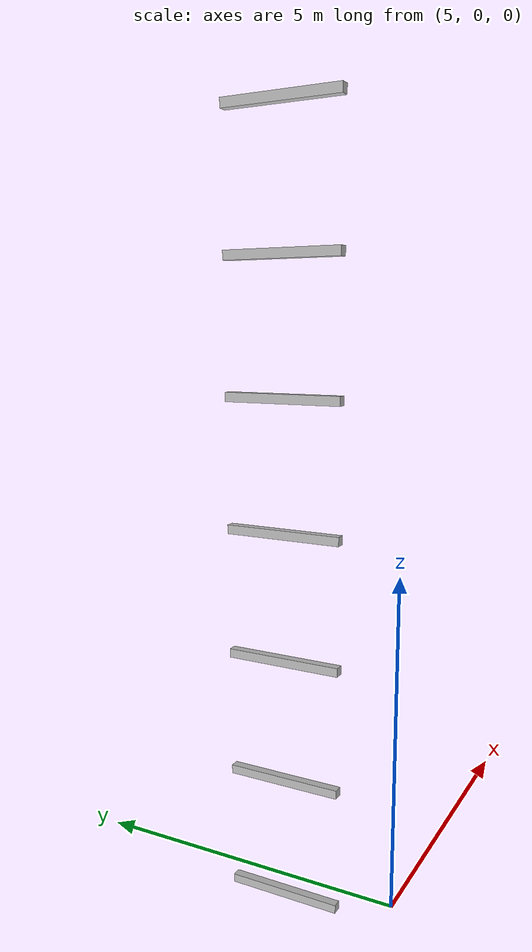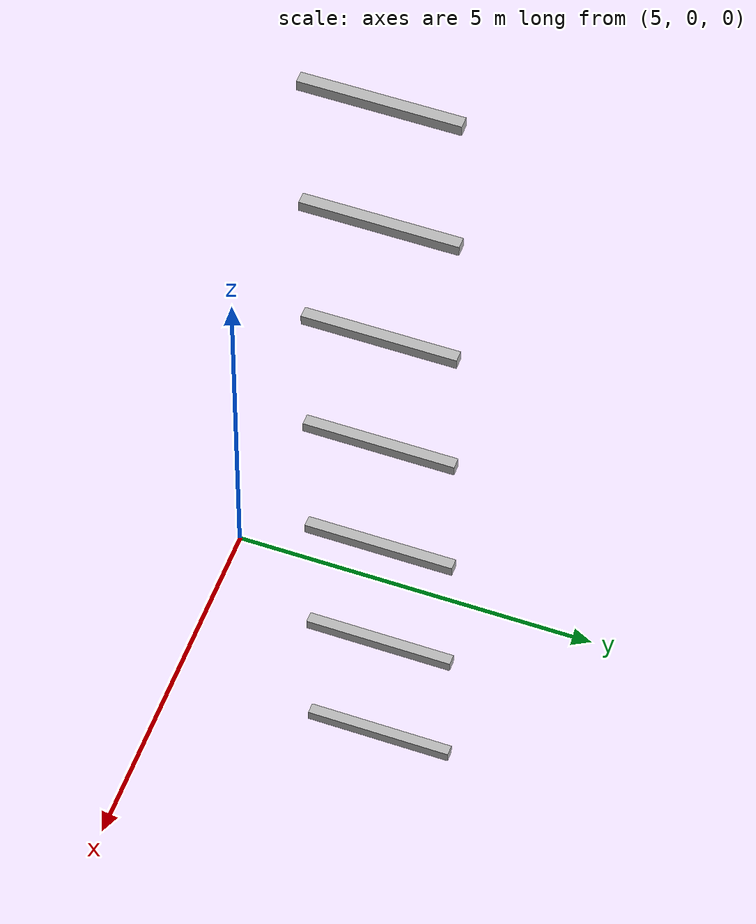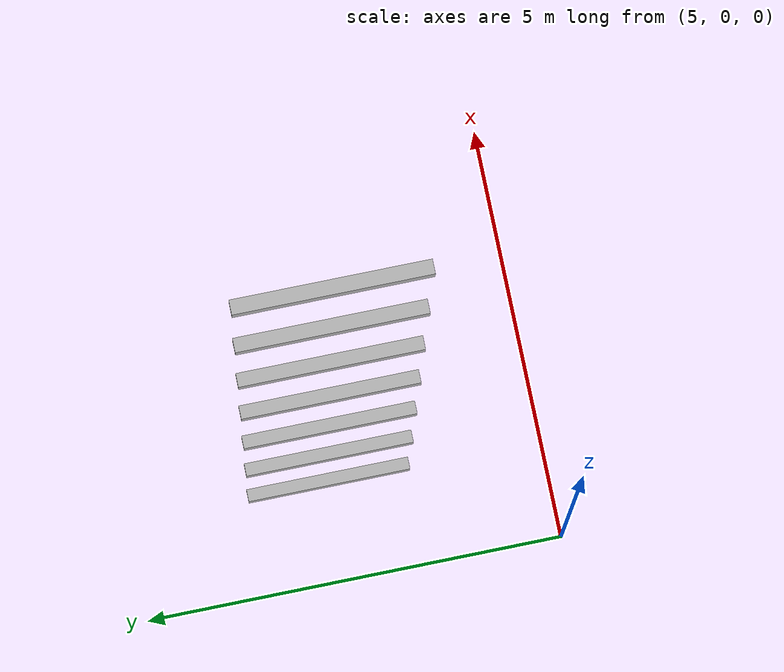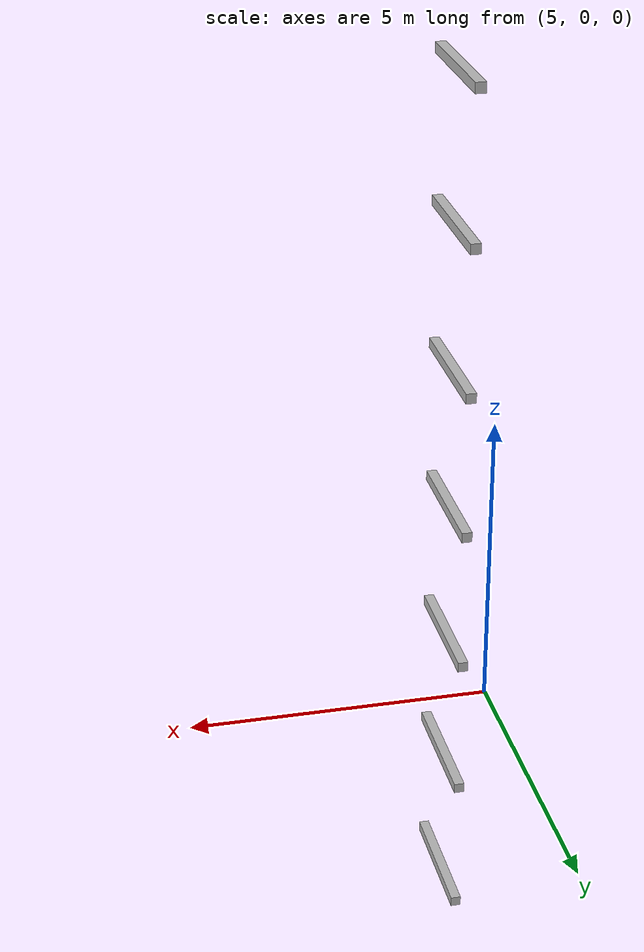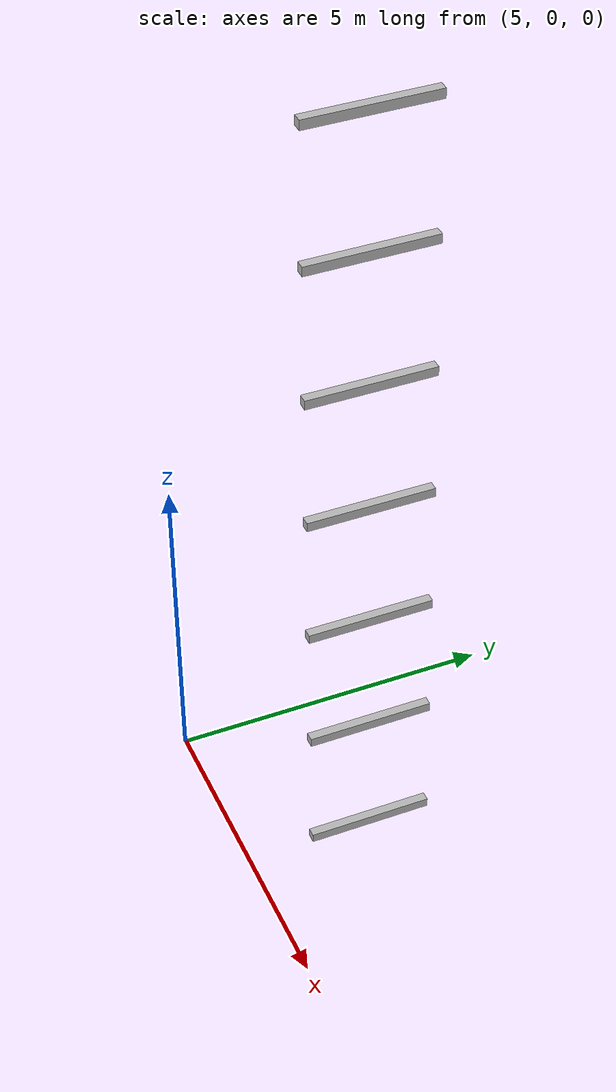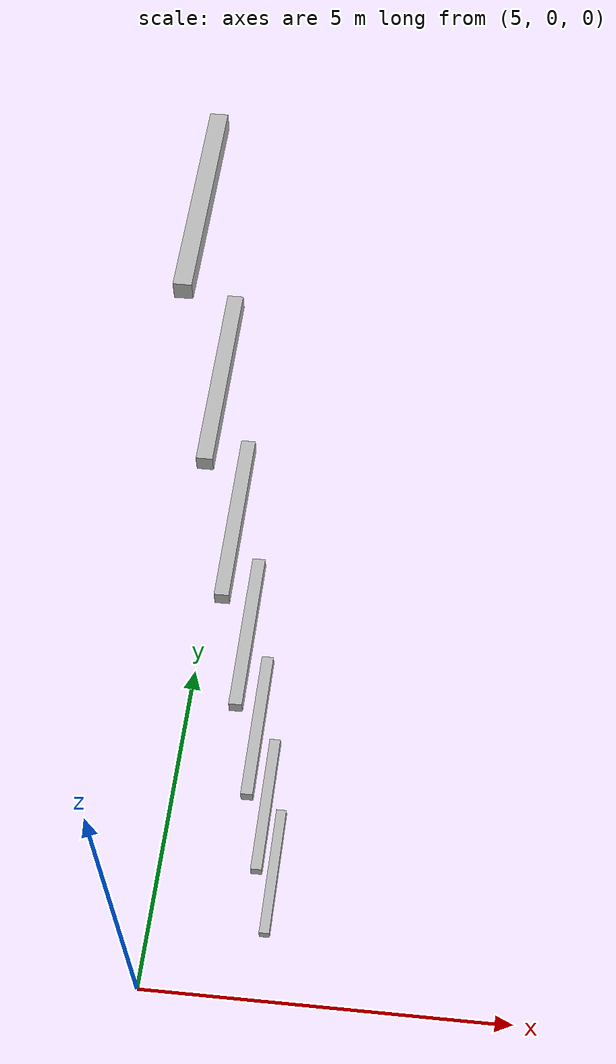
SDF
<sdf version="1.7">
 <world name="default">
  <model name="orthogonal_747_2.000.15_TS">
   <static>1</static>
   <link name="y_link_0_3_6">
    <inertial>
     <mass>1</mass>
     <inertia>
      <ixx>0.166667</ixx>
      <ixy>0</ixy>
      <ixz>0</ixz>
      <iyy>0.166667</iyy>
      <iyz>0</iyz>
      <izz>0.166667</izz>
     </inertia>
    </inertial>
    <pose>12.9 7.525 1.075 0 -0 0</pose>
    <visual name="visual_0">
     <laser_retro>617</laser_retro>
     <geometry><box><size>0.15 1e-06 0.15</size></box></geometry>
     <material>
      <script><name>Gazebo/Grey</name><uri>file://media/materials/scripts/gazebo.material</uri></script>
      <shader type="pixel"><normal_map>__default__</normal_map></shader>
      <ambient>0.678 0.498 0.659 1</ambient>
      <diffuse>0.7 0.7 0.7 1</diffuse>
      <specular>0.01 0.01 0.01 1</specular>
      <emissive>0 0 0 1</emissive>
     </material>
     <pose>0 -1 0 0 -0 0</pose>
     <transparency>1</transparency>
    </visual>
    <visual name="visual_1">
     <laser_retro>618</laser_retro>
     <geometry><box><size>0.15 1e-06 0.15</size></box></geometry>
     <material>
      <script><name>Gazebo/Grey</name><uri>file://media/materials/scripts/gazebo.material</uri></script>
      <shader type="pixel"><normal_map>__default__</normal_map></shader>
      <ambient>0.447 0.624 0.812 1</ambient>
      <diffuse>0.7 0.7 0.7 1</diffuse>
      <specular>0.01 0.01 0.01 1</specular>
      <emissive>0 0 0 1</emissive>
     </material>
     <pose>0 1 0 0 -0 0</pose>
     <transparency>1</transparency>
    </visual>
    <visual name="visual_2">
     <laser_retro>619</laser_retro>
     <geometry><box><size>0.15 2 1e-06</size></box></geometry>
     <material>
      <script><name>Gazebo/Grey</name><uri>file://media/materials/scripts/gazebo.material</uri></script>
      <shader type="pixel"><normal_map>__default__</normal_map></shader>
      <ambient>0.988 0.686 0.243 1</ambient>
      <diffuse>0.7 0.7 0.7 1</diffuse>
      <specular>0.01 0.01 0.01 1</specular>
      <emissive>0 0 0 1</emissive>
     </material>
     <pose>0 0 -0.075 0 -0 0</pose>
     <transparency>1</transparency>
    </visual>
    <visual name="visual_3">
     <laser_retro>620</laser_retro>
     <geometry><box><size>1e-06 2 0.15</size></box></geometry>
     <material>
      <script><name>Gazebo/Grey</name><uri>file://media/materials/scripts/gazebo.material</uri></script>
      <shader type="pixel"><normal_map>__default__</normal_map></shader>
      <ambient>0.988 0.914 0.31 1</ambient>
      <diffuse>0.7 0.7 0.7 1</diffuse>
      <specular>0.01 0.01 0.01 1</specular>
      <emissive>0 0 0 1</emissive>
     </material>
     <pose>0.075 0 0 0 -0 0</pose>
     <transparency>1</transparency>
    </visual>
    <visual name="visual_4">
     <laser_retro>621</laser_retro>
     <geometry><box><size>0.15 2 1e-06</size></box></geometry>
     <material>
      <script><name>Gazebo/Grey</name><uri>file://media/materials/scripts/gazebo.material</uri></script>
      <shader type="pixel"><normal_map>__default__</normal_map></shader>
      <ambient>0.937 0.161 0.161 1</ambient>
      <diffuse>0.7 0.7 0.7 1</diffuse>
      <specular>0.01 0.01 0.01 1</specular>
      <emissive>0 0 0 1</emissive>
     </material>
     <pose>0 0 0.075 0 -0 0</pose>
     <transparency>1</transparency>
    </visual>
    <visual name="visual_5">
     <laser_retro>622</laser_retro>
     <geometry><box><size>1e-06 2 0.15</size></box></geometry>
     <material>
      <script><name>Gazebo/Grey</name><uri>file://media/materials/scripts/gazebo.material</uri></script>
      <shader type="pixel"><normal_map>__default__</normal_map></shader>
      <ambient>0.541 0.886 0.204 1</ambient>
      <diffuse>0.7 0.7 0.7 1</diffuse>
      <specular>0.01 0.01 0.01 1</specular>
      <emissive>0 0 0 1</emissive>
     </material>
     <pose>-0.075 0 0 0 -0 0</pose>
     <transparency>1</transparency>
    </visual>
    <visual name="visual_texture">
     <geometry><box><size>0.149985 1.9998 0.149985</size></box></geometry>
     <material>
      <script>
       <uri>model://BASE_MODELS/simple_block_v2_textured/materials/scripts</uri>
       <uri>model://BASE_MODELS/simple_block_v2_textured/materials/textures</uri>
       <name>metal</name>
      </script>
     </material>
     <laser_retro>623</laser_retro>
    </visual>
    <collision name="collision">
     <geometry><box><size>0.15 2 0.15</size></box></geometry>
     <surface>
      <friction>
       <ode><mu>1</mu><mu2>1</mu2><fdir1>0 0 0</fdir1><slip1>0</slip1><slip2>0</slip2></ode>
       <torsional>
        <coefficient>1</coefficient>
        <patch_radius>0</patch_radius>
        <surface_radius>0</surface_radius>
        <use_patch_radius>1</use_patch_radius>
        <ode><slip>0</slip></ode>
       </torsional>
      </friction>
      <bounce><restitution_coefficient>0</restitution_coefficient><threshold>1e+06</threshold></bounce>
      <contact>
       <collide_without_contact>0</collide_without_contact>
       <collide_without_contact_bitmask>1</collide_without_contact_bitmask>
       <collide_bitmask>1</collide_bitmask>
       <ode>
        <soft_cfm>0</soft_cfm>
        <soft_erp>0.2</soft_erp>
        <kp>1e+13</kp>
        <kd>1</kd>
        <max_vel>0.01</max_vel>
        <min_depth>0</min_depth>
       </ode>
       <bullet>
        <split_impulse>1</split_impulse>
        <split_impulse_penetration_threshold>-0.01</split_impulse_penetration_threshold>
        <soft_cfm>0</soft_cfm>
        <soft_erp>0.2</soft_erp>
        <kp>1e+13</kp>
        <kd>1</kd>
       </bullet>
      </contact>
     </surface>
    </collision>
   </link>
   <link name="y_link_1_3_6">
    <inertial>
     <mass>1</mass>
     <inertia>
      <ixx>0.166667</ixx>
      <ixy>0</ixy>
      <ixz>0</ixz>
      <iyy>0.166667</iyy>
      <iyz>0</iyz>
      <izz>0.166667</izz>
     </inertia>
    </inertial>
    <pose>12.9 7.525 3.225 0 -0 0</pose>
    <visual name="visual_0">
     <laser_retro>1457</laser_retro>
     <geometry><box><size>0.15 1e-06 0.15</size></box></geometry>
     <material>
      <script><name>Gazebo/Grey</name><uri>file://media/materials/scripts/gazebo.material</uri></script>
      <shader type="pixel"><normal_map>__default__</normal_map></shader>
      <ambient>0.678 0.498 0.659 1</ambient>
      <diffuse>0.7 0.7 0.7 1</diffuse>
      <specular>0.01 0.01 0.01 1</specular>
      <emissive>0 0 0 1</emissive>
     </material>
     <pose>0 -1 0 0 -0 0</pose>
     <transparency>1</transparency>
    </visual>
    <visual name="visual_1">
     <laser_retro>1458</laser_retro>
     <geometry><box><size>0.15 1e-06 0.15</size></box></geometry>
     <material>
      <script><name>Gazebo/Grey</name><uri>file://media/materials/scripts/gazebo.material</uri></script>
      <shader type="pixel"><normal_map>__default__</normal_map></shader>
      <ambient>0.447 0.624 0.812 1</ambient>
      <diffuse>0.7 0.7 0.7 1</diffuse>
      <specular>0.01 0.01 0.01 1</specular>
      <emissive>0 0 0 1</emissive>
     </material>
     <pose>0 1 0 0 -0 0</pose>
     <transparency>1</transparency>
    </visual>
    <visual name="visual_2">
     <laser_retro>1459</laser_retro>
     <geometry><box><size>0.15 2 1e-06</size></box></geometry>
     <material>
      <script><name>Gazebo/Grey</name><uri>file://media/materials/scripts/gazebo.material</uri></script>
      <shader type="pixel"><normal_map>__default__</normal_map></shader>
      <ambient>0.988 0.686 0.243 1</ambient>
      <diffuse>0.7 0.7 0.7 1</diffuse>
      <specular>0.01 0.01 0.01 1</specular>
      <emissive>0 0 0 1</emissive>
     </material>
     <pose>0 0 -0.075 0 -0 0</pose>
     <transparency>1</transparency>
    </visual>
    <visual name="visual_3">
     <laser_retro>1460</laser_retro>
     <geometry><box><size>1e-06 2 0.15</size></box></geometry>
     <material>
      <script><name>Gazebo/Grey</name><uri>file://media/materials/scripts/gazebo.material</uri></script>
      <shader type="pixel"><normal_map>__default__</normal_map></shader>
      <ambient>0.988 0.914 0.31 1</ambient>
      <diffuse>0.7 0.7 0.7 1</diffuse>
      <specular>0.01 0.01 0.01 1</specular>
      <emissive>0 0 0 1</emissive>
     </material>
     <pose>0.075 0 0 0 -0 0</pose>
     <transparency>1</transparency>
    </visual>
    <visual name="visual_4">
     <laser_retro>1461</laser_retro>
     <geometry><box><size>0.15 2 1e-06</size></box></geometry>
     <material>
      <script><name>Gazebo/Grey</name><uri>file://media/materials/scripts/gazebo.material</uri></script>
      <shader type="pixel"><normal_map>__default__</normal_map></shader>
      <ambient>0.937 0.161 0.161 1</ambient>
      <diffuse>0.7 0.7 0.7 1</diffuse>
      <specular>0.01 0.01 0.01 1</specular>
      <emissive>0 0 0 1</emissive>
     </material>
     <pose>0 0 0.075 0 -0 0</pose>
     <transparency>1</transparency>
    </visual>
    <visual name="visual_5">
     <laser_retro>1462</laser_retro>
     <geometry><box><size>1e-06 2 0.15</size></box></geometry>
     <material>
      <script><name>Gazebo/Grey</name><uri>file://media/materials/scripts/gazebo.material</uri></script>
      <shader type="pixel"><normal_map>__default__</normal_map></shader>
      <ambient>0.541 0.886 0.204 1</ambient>
      <diffuse>0.7 0.7 0.7 1</diffuse>
      <specular>0.01 0.01 0.01 1</specular>
      <emissive>0 0 0 1</emissive>
     </material>
     <pose>-0.075 0 0 0 -0 0</pose>
     <transparency>1</transparency>
    </visual>
    <visual name="visual_texture">
     <geometry><box><size>0.149985 1.9998 0.149985</size></box></geometry>
     <material>
      <script>
       <uri>model://BASE_MODELS/simple_block_v2_textured/materials/scripts</uri>
       <uri>model://BASE_MODELS/simple_block_v2_textured/materials/textures</uri>
       <name>metal</name>
      </script>
     </material>
     <laser_retro>1463</laser_retro>
    </visual>
    <collision name="collision">
     <geometry><box><size>0.15 2 0.15</size></box></geometry>
     <surface>
      <friction>
       <ode><mu>1</mu><mu2>1</mu2><fdir1>0 0 0</fdir1><slip1>0</slip1><slip2>0</slip2></ode>
       <torsional>
        <coefficient>1</coefficient>
        <patch_radius>0</patch_radius>
        <surface_radius>0</surface_radius>
        <use_patch_radius>1</use_patch_radius>
        <ode><slip>0</slip></ode>
       </torsional>
      </friction>
      <bounce><restitution_coefficient>0</restitution_coefficient><threshold>1e+06</threshold></bounce>
      <contact>
       <collide_without_contact>0</collide_without_contact>
       <collide_without_contact_bitmask>1</collide_without_contact_bitmask>
       <collide_bitmask>1</collide_bitmask>
       <ode>
        <soft_cfm>0</soft_cfm>
        <soft_erp>0.2</soft_erp>
        <kp>1e+13</kp>
        <kd>1</kd>
        <max_vel>0.01</max_vel>
        <min_depth>0</min_depth>
       </ode>
       <bullet>
        <split_impulse>1</split_impulse>
        <split_impulse_penetration_threshold>-0.01</split_impulse_penetration_threshold>
        <soft_cfm>0</soft_cfm>
        <soft_erp>0.2</soft_erp>
        <kp>1e+13</kp>
        <kd>1</kd>
       </bullet>
      </contact>
     </surface>
    </collision>
   </link>
   <link name="y_link_2_3_6">
    <inertial>
     <mass>1</mass>
     <inertia>
      <ixx>0.166667</ixx>
      <ixy>0</ixy>
      <ixz>0</ixz>
      <iyy>0.166667</iyy>
      <iyz>0</iyz>
      <izz>0.166667</izz>
     </inertia>
    </inertial>
    <pose>12.9 7.525 5.375 0 -0 0</pose>
    <visual name="visual_0">
     <laser_retro>2360</laser_retro>
     <geometry><box><size>0.15 1e-06 0.15</size></box></geometry>
     <material>
      <script><name>Gazebo/Grey</name><uri>file://media/materials/scripts/gazebo.material</uri></script>
      <shader type="pixel"><normal_map>__default__</normal_map></shader>
      <ambient>0.678 0.498 0.659 1</ambient>
      <diffuse>0.7 0.7 0.7 1</diffuse>
      <specular>0.01 0.01 0.01 1</specular>
      <emissive>0 0 0 1</emissive>
     </material>
     <pose>0 -1 0 0 -0 0</pose>
     <transparency>1</transparency>
    </visual>
    <visual name="visual_1">
     <laser_retro>2361</laser_retro>
     <geometry><box><size>0.15 1e-06 0.15</size></box></geometry>
     <material>
      <script><name>Gazebo/Grey</name><uri>file://media/materials/scripts/gazebo.material</uri></script>
      <shader type="pixel"><normal_map>__default__</normal_map></shader>
      <ambient>0.447 0.624 0.812 1</ambient>
      <diffuse>0.7 0.7 0.7 1</diffuse>
      <specular>0.01 0.01 0.01 1</specular>
      <emissive>0 0 0 1</emissive>
     </material>
     <pose>0 1 0 0 -0 0</pose>
     <transparency>1</transparency>
    </visual>
    <visual name="visual_2">
     <laser_retro>2362</laser_retro>
     <geometry><box><size>0.15 2 1e-06</size></box></geometry>
     <material>
      <script><name>Gazebo/Grey</name><uri>file://media/materials/scripts/gazebo.material</uri></script>
      <shader type="pixel"><normal_map>__default__</normal_map></shader>
      <ambient>0.988 0.686 0.243 1</ambient>
      <diffuse>0.7 0.7 0.7 1</diffuse>
      <specular>0.01 0.01 0.01 1</specular>
      <emissive>0 0 0 1</emissive>
     </material>
     <pose>0 0 -0.075 0 -0 0</pose>
     <transparency>1</transparency>
    </visual>
    <visual name="visual_3">
     <laser_retro>2363</laser_retro>
     <geometry><box><size>1e-06 2 0.15</size></box></geometry>
     <material>
      <script><name>Gazebo/Grey</name><uri>file://media/materials/scripts/gazebo.material</uri></script>
      <shader type="pixel"><normal_map>__default__</normal_map></shader>
      <ambient>0.988 0.914 0.31 1</ambient>
      <diffuse>0.7 0.7 0.7 1</diffuse>
      <specular>0.01 0.01 0.01 1</specular>
      <emissive>0 0 0 1</emissive>
     </material>
     <pose>0.075 0 0 0 -0 0</pose>
     <transparency>1</transparency>
    </visual>
    <visual name="visual_4">
     <laser_retro>2364</laser_retro>
     <geometry><box><size>0.15 2 1e-06</size></box></geometry>
     <material>
      <script><name>Gazebo/Grey</name><uri>file://media/materials/scripts/gazebo.material</uri></script>
      <shader type="pixel"><normal_map>__default__</normal_map></shader>
      <ambient>0.937 0.161 0.161 1</ambient>
      <diffuse>0.7 0.7 0.7 1</diffuse>
      <specular>0.01 0.01 0.01 1</specular>
      <emissive>0 0 0 1</emissive>
     </material>
     <pose>0 0 0.075 0 -0 0</pose>
     <transparency>1</transparency>
    </visual>
    <visual name="visual_5">
     <laser_retro>2365</laser_retro>
     <geometry><box><size>1e-06 2 0.15</size></box></geometry>
     <material>
      <script><name>Gazebo/Grey</name><uri>file://media/materials/scripts/gazebo.material</uri></script>
      <shader type="pixel"><normal_map>__default__</normal_map></shader>
      <ambient>0.541 0.886 0.204 1</ambient>
      <diffuse>0.7 0.7 0.7 1</diffuse>
      <specular>0.01 0.01 0.01 1</specular>
      <emissive>0 0 0 1</emissive>
     </material>
     <pose>-0.075 0 0 0 -0 0</pose>
     <transparency>1</transparency>
    </visual>
    <visual name="visual_texture">
     <geometry><box><size>0.149985 1.9998 0.149985</size></box></geometry>
     <material>
      <script>
       <uri>model://BASE_MODELS/simple_block_v2_textured/materials/scripts</uri>
       <uri>model://BASE_MODELS/simple_block_v2_textured/materials/textures</uri>
       <name>metal</name>
      </script>
     </material>
     <laser_retro>2366</laser_retro>
    </visual>
    <collision name="collision">
     <geometry><box><size>0.15 2 0.15</size></box></geometry>
     <surface>
      <friction>
       <ode><mu>1</mu><mu2>1</mu2><fdir1>0 0 0</fdir1><slip1>0</slip1><slip2>0</slip2></ode>
       <torsional>
        <coefficient>1</coefficient>
        <patch_radius>0</patch_radius>
        <surface_radius>0</surface_radius>
        <use_patch_radius>1</use_patch_radius>
        <ode><slip>0</slip></ode>
       </torsional>
      </friction>
      <bounce><restitution_coefficient>0</restitution_coefficient><threshold>1e+06</threshold></bounce>
      <contact>
       <collide_without_contact>0</collide_without_contact>
       <collide_without_contact_bitmask>1</collide_without_contact_bitmask>
       <collide_bitmask>1</collide_bitmask>
       <ode>
        <soft_cfm>0</soft_cfm>
        <soft_erp>0.2</soft_erp>
        <kp>1e+13</kp>
        <kd>1</kd>
        <max_vel>0.01</max_vel>
        <min_depth>0</min_depth>
       </ode>
       <bullet>
        <split_impulse>1</split_impulse>
        <split_impulse_penetration_threshold>-0.01</split_impulse_penetration_threshold>
        <soft_cfm>0</soft_cfm>
        <soft_erp>0.2</soft_erp>
        <kp>1e+13</kp>
        <kd>1</kd>
       </bullet>
      </contact>
     </surface>
    </collision>
   </link>
   <link name="y_link_3_3_6">
    <inertial>
     <mass>1</mass>
     <inertia>
      <ixx>0.166667</ixx>
      <ixy>0</ixy>
      <ixz>0</ixz>
      <iyy>0.166667</iyy>
      <iyz>0</iyz>
      <izz>0.166667</izz>
     </inertia>
    </inertial>
    <pose>12.9 7.525 7.525 0 -0 0</pose>
    <visual name="visual_0">
     <laser_retro>3263</laser_retro>
     <geometry><box><size>0.15 1e-06 0.15</size></box></geometry>
     <material>
      <script><name>Gazebo/Grey</name><uri>file://media/materials/scripts/gazebo.material</uri></script>
      <shader type="pixel"><normal_map>__default__</normal_map></shader>
      <ambient>0.678 0.498 0.659 1</ambient>
      <diffuse>0.7 0.7 0.7 1</diffuse>
      <specular>0.01 0.01 0.01 1</specular>
      <emissive>0 0 0 1</emissive>
     </material>
     <pose>0 -1 0 0 -0 0</pose>
     <transparency>1</transparency>
    </visual>
    <visual name="visual_1">
     <laser_retro>3264</laser_retro>
     <geometry><box><size>0.15 1e-06 0.15</size></box></geometry>
     <material>
      <script><name>Gazebo/Grey</name><uri>file://media/materials/scripts/gazebo.material</uri></script>
      <shader type="pixel"><normal_map>__default__</normal_map></shader>
      <ambient>0.447 0.624 0.812 1</ambient>
      <diffuse>0.7 0.7 0.7 1</diffuse>
      <specular>0.01 0.01 0.01 1</specular>
      <emissive>0 0 0 1</emissive>
     </material>
     <pose>0 1 0 0 -0 0</pose>
     <transparency>1</transparency>
    </visual>
    <visual name="visual_2">
     <laser_retro>3265</laser_retro>
     <geometry><box><size>0.15 2 1e-06</size></box></geometry>
     <material>
      <script><name>Gazebo/Grey</name><uri>file://media/materials/scripts/gazebo.material</uri></script>
      <shader type="pixel"><normal_map>__default__</normal_map></shader>
      <ambient>0.988 0.686 0.243 1</ambient>
      <diffuse>0.7 0.7 0.7 1</diffuse>
      <specular>0.01 0.01 0.01 1</specular>
      <emissive>0 0 0 1</emissive>
     </material>
     <pose>0 0 -0.075 0 -0 0</pose>
     <transparency>1</transparency>
    </visual>
    <visual name="visual_3">
     <laser_retro>3266</laser_retro>
     <geometry><box><size>1e-06 2 0.15</size></box></geometry>
     <material>
      <script><name>Gazebo/Grey</name><uri>file://media/materials/scripts/gazebo.material</uri></script>
      <shader type="pixel"><normal_map>__default__</normal_map></shader>
      <ambient>0.988 0.914 0.31 1</ambient>
      <diffuse>0.7 0.7 0.7 1</diffuse>
      <specular>0.01 0.01 0.01 1</specular>
      <emissive>0 0 0 1</emissive>
     </material>
     <pose>0.075 0 0 0 -0 0</pose>
     <transparency>1</transparency>
    </visual>
    <visual name="visual_4">
     <laser_retro>3267</laser_retro>
     <geometry><box><size>0.15 2 1e-06</size></box></geometry>
     <material>
      <script><name>Gazebo/Grey</name><uri>file://media/materials/scripts/gazebo.material</uri></script>
      <shader type="pixel"><normal_map>__default__</normal_map></shader>
      <ambient>0.937 0.161 0.161 1</ambient>
      <diffuse>0.7 0.7 0.7 1</diffuse>
      <specular>0.01 0.01 0.01 1</specular>
      <emissive>0 0 0 1</emissive>
     </material>
     <pose>0 0 0.075 0 -0 0</pose>
     <transparency>1</transparency>
    </visual>
    <visual name="visual_5">
     <laser_retro>3268</laser_retro>
     <geometry><box><size>1e-06 2 0.15</size></box></geometry>
     <material>
      <script><name>Gazebo/Grey</name><uri>file://media/materials/scripts/gazebo.material</uri></script>
      <shader type="pixel"><normal_map>__default__</normal_map></shader>
      <ambient>0.541 0.886 0.204 1</ambient>
      <diffuse>0.7 0.7 0.7 1</diffuse>
      <specular>0.01 0.01 0.01 1</specular>
      <emissive>0 0 0 1</emissive>
     </material>
     <pose>-0.075 0 0 0 -0 0</pose>
     <transparency>1</transparency>
    </visual>
    <visual name="visual_texture">
     <geometry><box><size>0.149985 1.9998 0.149985</size></box></geometry>
     <material>
      <script>
       <uri>model://BASE_MODELS/simple_block_v2_textured/materials/scripts</uri>
       <uri>model://BASE_MODELS/simple_block_v2_textured/materials/textures</uri>
       <name>metal</name>
      </script>
     </material>
     <laser_retro>3269</laser_retro>
    </visual>
    <collision name="collision">
     <geometry><box><size>0.15 2 0.15</size></box></geometry>
     <surface>
      <friction>
       <ode><mu>1</mu><mu2>1</mu2><fdir1>0 0 0</fdir1><slip1>0</slip1><slip2>0</slip2></ode>
       <torsional>
        <coefficient>1</coefficient>
        <patch_radius>0</patch_radius>
        <surface_radius>0</surface_radius>
        <use_patch_radius>1</use_patch_radius>
        <ode><slip>0</slip></ode>
       </torsional>
      </friction>
      <bounce><restitution_coefficient>0</restitution_coefficient><threshold>1e+06</threshold></bounce>
      <contact>
       <collide_without_contact>0</collide_without_contact>
       <collide_without_contact_bitmask>1</collide_without_contact_bitmask>
       <collide_bitmask>1</collide_bitmask>
       <ode>
        <soft_cfm>0</soft_cfm>
        <soft_erp>0.2</soft_erp>
        <kp>1e+13</kp>
        <kd>1</kd>
        <max_vel>0.01</max_vel>
        <min_depth>0</min_depth>
       </ode>
       <bullet>
        <split_impulse>1</split_impulse>
        <split_impulse_penetration_threshold>-0.01</split_impulse_penetration_threshold>
        <soft_cfm>0</soft_cfm>
        <soft_erp>0.2</soft_erp>
        <kp>1e+13</kp>
        <kd>1</kd>
       </bullet>
      </contact>
     </surface>
    </collision>
   </link>
   <link name="y_link_4_3_6">
    <inertial>
     <mass>1</mass>
     <inertia>
      <ixx>0.166667</ixx>
      <ixy>0</ixy>
      <ixz>0</ixz>
      <iyy>0.166667</iyy>
      <iyz>0</iyz>
      <izz>0.166667</izz>
     </inertia>
    </inertial>
    <pose>12.9 7.525 9.675 0 -0 0</pose>
    <visual name="visual_0">
     <laser_retro>4166</laser_retro>
     <geometry><box><size>0.15 1e-06 0.15</size></box></geometry>
     <material>
      <script><name>Gazebo/Grey</name><uri>file://media/materials/scripts/gazebo.material</uri></script>
      <shader type="pixel"><normal_map>__default__</normal_map></shader>
      <ambient>0.678 0.498 0.659 1</ambient>
      <diffuse>0.7 0.7 0.7 1</diffuse>
      <specular>0.01 0.01 0.01 1</specular>
      <emissive>0 0 0 1</emissive>
     </material>
     <pose>0 -1 0 0 -0 0</pose>
     <transparency>1</transparency>
    </visual>
    <visual name="visual_1">
     <laser_retro>4167</laser_retro>
     <geometry><box><size>0.15 1e-06 0.15</size></box></geometry>
     <material>
      <script><name>Gazebo/Grey</name><uri>file://media/materials/scripts/gazebo.material</uri></script>
      <shader type="pixel"><normal_map>__default__</normal_map></shader>
      <ambient>0.447 0.624 0.812 1</ambient>
      <diffuse>0.7 0.7 0.7 1</diffuse>
      <specular>0.01 0.01 0.01 1</specular>
      <emissive>0 0 0 1</emissive>
     </material>
     <pose>0 1 0 0 -0 0</pose>
     <transparency>1</transparency>
    </visual>
    <visual name="visual_2">
     <laser_retro>4168</laser_retro>
     <geometry><box><size>0.15 2 1e-06</size></box></geometry>
     <material>
      <script><name>Gazebo/Grey</name><uri>file://media/materials/scripts/gazebo.material</uri></script>
      <shader type="pixel"><normal_map>__default__</normal_map></shader>
      <ambient>0.988 0.686 0.243 1</ambient>
      <diffuse>0.7 0.7 0.7 1</diffuse>
      <specular>0.01 0.01 0.01 1</specular>
      <emissive>0 0 0 1</emissive>
     </material>
     <pose>0 0 -0.075 0 -0 0</pose>
     <transparency>1</transparency>
    </visual>
    <visual name="visual_3">
     <laser_retro>4169</laser_retro>
     <geometry><box><size>1e-06 2 0.15</size></box></geometry>
     <material>
      <script><name>Gazebo/Grey</name><uri>file://media/materials/scripts/gazebo.material</uri></script>
      <shader type="pixel"><normal_map>__default__</normal_map></shader>
      <ambient>0.988 0.914 0.31 1</ambient>
      <diffuse>0.7 0.7 0.7 1</diffuse>
      <specular>0.01 0.01 0.01 1</specular>
      <emissive>0 0 0 1</emissive>
     </material>
     <pose>0.075 0 0 0 -0 0</pose>
     <transparency>1</transparency>
    </visual>
    <visual name="visual_4">
     <laser_retro>4170</laser_retro>
     <geometry><box><size>0.15 2 1e-06</size></box></geometry>
     <material>
      <script><name>Gazebo/Grey</name><uri>file://media/materials/scripts/gazebo.material</uri></script>
      <shader type="pixel"><normal_map>__default__</normal_map></shader>
      <ambient>0.937 0.161 0.161 1</ambient>
      <diffuse>0.7 0.7 0.7 1</diffuse>
      <specular>0.01 0.01 0.01 1</specular>
      <emissive>0 0 0 1</emissive>
     </material>
     <pose>0 0 0.075 0 -0 0</pose>
     <transparency>1</transparency>
    </visual>
    <visual name="visual_5">
     <laser_retro>4171</laser_retro>
     <geometry><box><size>1e-06 2 0.15</size></box></geometry>
     <material>
      <script><name>Gazebo/Grey</name><uri>file://media/materials/scripts/gazebo.material</uri></script>
      <shader type="pixel"><normal_map>__default__</normal_map></shader>
      <ambient>0.541 0.886 0.204 1</ambient>
      <diffuse>0.7 0.7 0.7 1</diffuse>
      <specular>0.01 0.01 0.01 1</specular>
      <emissive>0 0 0 1</emissive>
     </material>
     <pose>-0.075 0 0 0 -0 0</pose>
     <transparency>1</transparency>
    </visual>
    <visual name="visual_texture">
     <geometry><box><size>0.149985 1.9998 0.149985</size></box></geometry>
     <material>
      <script>
       <uri>model://BASE_MODELS/simple_block_v2_textured/materials/scripts</uri>
       <uri>model://BASE_MODELS/simple_block_v2_textured/materials/textures</uri>
       <name>metal</name>
      </script>
     </material>
     <laser_retro>4172</laser_retro>
    </visual>
    <collision name="collision">
     <geometry><box><size>0.15 2 0.15</size></box></geometry>
     <surface>
      <friction>
       <ode><mu>1</mu><mu2>1</mu2><fdir1>0 0 0</fdir1><slip1>0</slip1><slip2>0</slip2></ode>
       <torsional>
        <coefficient>1</coefficient>
        <patch_radius>0</patch_radius>
        <surface_radius>0</surface_radius>
        <use_patch_radius>1</use_patch_radius>
        <ode><slip>0</slip></ode>
       </torsional>
      </friction>
      <bounce><restitution_coefficient>0</restitution_coefficient><threshold>1e+06</threshold></bounce>
      <contact>
       <collide_without_contact>0</collide_without_contact>
       <collide_without_contact_bitmask>1</collide_without_contact_bitmask>
       <collide_bitmask>1</collide_bitmask>
       <ode>
        <soft_cfm>0</soft_cfm>
        <soft_erp>0.2</soft_erp>
        <kp>1e+13</kp>
        <kd>1</kd>
        <max_vel>0.01</max_vel>
        <min_depth>0</min_depth>
       </ode>
       <bullet>
        <split_impulse>1</split_impulse>
        <split_impulse_penetration_threshold>-0.01</split_impulse_penetration_threshold>
        <soft_cfm>0</soft_cfm>
        <soft_erp>0.2</soft_erp>
        <kp>1e+13</kp>
        <kd>1</kd>
       </bullet>
      </contact>
     </surface>
    </collision>
   </link>
   <link name="y_link_5_3_6">
    <inertial>
     <mass>1</mass>
     <inertia>
      <ixx>0.166667</ixx>
      <ixy>0</ixy>
      <ixz>0</ixz>
      <iyy>0.166667</iyy>
      <iyz>0</iyz>
      <izz>0.166667</izz>
     </inertia>
    </inertial>
    <pose>12.9 7.525 11.825 0 -0 0</pose>
    <visual name="visual_0">
     <laser_retro>5069</laser_retro>
     <geometry><box><size>0.15 1e-06 0.15</size></box></geometry>
     <material>
      <script><name>Gazebo/Grey</name><uri>file://media/materials/scripts/gazebo.material</uri></script>
      <shader type="pixel"><normal_map>__default__</normal_map></shader>
      <ambient>0.678 0.498 0.659 1</ambient>
      <diffuse>0.7 0.7 0.7 1</diffuse>
      <specular>0.01 0.01 0.01 1</specular>
      <emissive>0 0 0 1</emissive>
     </material>
     <pose>0 -1 0 0 -0 0</pose>
     <transparency>1</transparency>
    </visual>
    <visual name="visual_1">
     <laser_retro>5070</laser_retro>
     <geometry><box><size>0.15 1e-06 0.15</size></box></geometry>
     <material>
      <script><name>Gazebo/Grey</name><uri>file://media/materials/scripts/gazebo.material</uri></script>
      <shader type="pixel"><normal_map>__default__</normal_map></shader>
      <ambient>0.447 0.624 0.812 1</ambient>
      <diffuse>0.7 0.7 0.7 1</diffuse>
      <specular>0.01 0.01 0.01 1</specular>
      <emissive>0 0 0 1</emissive>
     </material>
     <pose>0 1 0 0 -0 0</pose>
     <transparency>1</transparency>
    </visual>
    <visual name="visual_2">
     <laser_retro>5071</laser_retro>
     <geometry><box><size>0.15 2 1e-06</size></box></geometry>
     <material>
      <script><name>Gazebo/Grey</name><uri>file://media/materials/scripts/gazebo.material</uri></script>
      <shader type="pixel"><normal_map>__default__</normal_map></shader>
      <ambient>0.988 0.686 0.243 1</ambient>
      <diffuse>0.7 0.7 0.7 1</diffuse>
      <specular>0.01 0.01 0.01 1</specular>
      <emissive>0 0 0 1</emissive>
     </material>
     <pose>0 0 -0.075 0 -0 0</pose>
     <transparency>1</transparency>
    </visual>
    <visual name="visual_3">
     <laser_retro>5072</laser_retro>
     <geometry><box><size>1e-06 2 0.15</size></box></geometry>
     <material>
      <script><name>Gazebo/Grey</name><uri>file://media/materials/scripts/gazebo.material</uri></script>
      <shader type="pixel"><normal_map>__default__</normal_map></shader>
      <ambient>0.988 0.914 0.31 1</ambient>
      <diffuse>0.7 0.7 0.7 1</diffuse>
      <specular>0.01 0.01 0.01 1</specular>
      <emissive>0 0 0 1</emissive>
     </material>
     <pose>0.075 0 0 0 -0 0</pose>
     <transparency>1</transparency>
    </visual>
    <visual name="visual_4">
     <laser_retro>5073</laser_retro>
     <geometry><box><size>0.15 2 1e-06</size></box></geometry>
     <material>
      <script><name>Gazebo/Grey</name><uri>file://media/materials/scripts/gazebo.material</uri></script>
      <shader type="pixel"><normal_map>__default__</normal_map></shader>
      <ambient>0.937 0.161 0.161 1</ambient>
      <diffuse>0.7 0.7 0.7 1</diffuse>
      <specular>0.01 0.01 0.01 1</specular>
      <emissive>0 0 0 1</emissive>
     </material>
     <pose>0 0 0.075 0 -0 0</pose>
     <transparency>1</transparency>
    </visual>
    <visual name="visual_5">
     <laser_retro>5074</laser_retro>
     <geometry><box><size>1e-06 2 0.15</size></box></geometry>
     <material>
      <script><name>Gazebo/Grey</name><uri>file://media/materials/scripts/gazebo.material</uri></script>
      <shader type="pixel"><normal_map>__default__</normal_map></shader>
      <ambient>0.541 0.886 0.204 1</ambient>
      <diffuse>0.7 0.7 0.7 1</diffuse>
      <specular>0.01 0.01 0.01 1</specular>
      <emissive>0 0 0 1</emissive>
     </material>
     <pose>-0.075 0 0 0 -0 0</pose>
     <transparency>1</transparency>
    </visual>
    <visual name="visual_texture">
     <geometry><box><size>0.149985 1.9998 0.149985</size></box></geometry>
     <material>
      <script>
       <uri>model://BASE_MODELS/simple_block_v2_textured/materials/scripts</uri>
       <uri>model://BASE_MODELS/simple_block_v2_textured/materials/textures</uri>
       <name>metal</name>
      </script>
     </material>
     <laser_retro>5075</laser_retro>
    </visual>
    <collision name="collision">
     <geometry><box><size>0.15 2 0.15</size></box></geometry>
     <surface>
      <friction>
       <ode><mu>1</mu><mu2>1</mu2><fdir1>0 0 0</fdir1><slip1>0</slip1><slip2>0</slip2></ode>
       <torsional>
        <coefficient>1</coefficient>
        <patch_radius>0</patch_radius>
        <surface_radius>0</surface_radius>
        <use_patch_radius>1</use_patch_radius>
        <ode><slip>0</slip></ode>
       </torsional>
      </friction>
      <bounce><restitution_coefficient>0</restitution_coefficient><threshold>1e+06</threshold></bounce>
      <contact>
       <collide_without_contact>0</collide_without_contact>
       <collide_without_contact_bitmask>1</collide_without_contact_bitmask>
       <collide_bitmask>1</collide_bitmask>
       <ode>
        <soft_cfm>0</soft_cfm>
        <soft_erp>0.2</soft_erp>
        <kp>1e+13</kp>
        <kd>1</kd>
        <max_vel>0.01</max_vel>
        <min_depth>0</min_depth>
       </ode>
       <bullet>
        <split_impulse>1</split_impulse>
        <split_impulse_penetration_threshold>-0.01</split_impulse_penetration_threshold>
        <soft_cfm>0</soft_cfm>
        <soft_erp>0.2</soft_erp>
        <kp>1e+13</kp>
        <kd>1</kd>
       </bullet>
      </contact>
     </surface>
    </collision>
   </link>
   <link name="y_link_6_3_6">
    <inertial>
     <mass>1</mass>
     <inertia>
      <ixx>0.166667</ixx>
      <ixy>0</ixy>
      <ixz>0</ixz>
      <iyy>0.166667</iyy>
      <iyz>0</iyz>
      <izz>0.166667</izz>
     </inertia>
    </inertial>
    <pose>12.9 7.525 13.975 0 -0 0</pose>
    <visual name="visual_0">
     <laser_retro>6091</laser_retro>
     <geometry><box><size>0.15 1e-06 0.15</size></box></geometry>
     <material>
      <script><name>Gazebo/Grey</name><uri>file://media/materials/scripts/gazebo.material</uri></script>
      <shader type="pixel"><normal_map>__default__</normal_map></shader>
      <ambient>0.678 0.498 0.659 1</ambient>
      <diffuse>0.7 0.7 0.7 1</diffuse>
      <specular>0.01 0.01 0.01 1</specular>
      <emissive>0 0 0 1</emissive>
     </material>
     <pose>0 -1 0 0 -0 0</pose>
     <transparency>1</transparency>
    </visual>
    <visual name="visual_1">
     <laser_retro>6092</laser_retro>
     <geometry><box><size>0.15 1e-06 0.15</size></box></geometry>
     <material>
      <script><name>Gazebo/Grey</name><uri>file://media/materials/scripts/gazebo.material</uri></script>
      <shader type="pixel"><normal_map>__default__</normal_map></shader>
      <ambient>0.447 0.624 0.812 1</ambient>
      <diffuse>0.7 0.7 0.7 1</diffuse>
      <specular>0.01 0.01 0.01 1</specular>
      <emissive>0 0 0 1</emissive>
     </material>
     <pose>0 1 0 0 -0 0</pose>
     <transparency>1</transparency>
    </visual>
    <visual name="visual_2">
     <laser_retro>6093</laser_retro>
     <geometry><box><size>0.15 2 1e-06</size></box></geometry>
     <material>
      <script><name>Gazebo/Grey</name><uri>file://media/materials/scripts/gazebo.material</uri></script>
      <shader type="pixel"><normal_map>__default__</normal_map></shader>
      <ambient>0.988 0.686 0.243 1</ambient>
      <diffuse>0.7 0.7 0.7 1</diffuse>
      <specular>0.01 0.01 0.01 1</specular>
      <emissive>0 0 0 1</emissive>
     </material>
     <pose>0 0 -0.075 0 -0 0</pose>
     <transparency>1</transparency>
    </visual>
    <visual name="visual_3">
     <laser_retro>6094</laser_retro>
     <geometry><box><size>1e-06 2 0.15</size></box></geometry>
     <material>
      <script><name>Gazebo/Grey</name><uri>file://media/materials/scripts/gazebo.material</uri></script>
      <shader type="pixel"><normal_map>__default__</normal_map></shader>
      <ambient>0.988 0.914 0.31 1</ambient>
      <diffuse>0.7 0.7 0.7 1</diffuse>
      <specular>0.01 0.01 0.01 1</specular>
      <emissive>0 0 0 1</emissive>
     </material>
     <pose>0.075 0 0 0 -0 0</pose>
     <transparency>1</transparency>
    </visual>
    <visual name="visual_4">
     <laser_retro>6095</laser_retro>
     <geometry><box><size>0.15 2 1e-06</size></box></geometry>
     <material>
      <script><name>Gazebo/Grey</name><uri>file://media/materials/scripts/gazebo.material</uri></script>
      <shader type="pixel"><normal_map>__default__</normal_map></shader>
      <ambient>0.937 0.161 0.161 1</ambient>
      <diffuse>0.7 0.7 0.7 1</diffuse>
      <specular>0.01 0.01 0.01 1</specular>
      <emissive>0 0 0 1</emissive>
     </material>
     <pose>0 0 0.075 0 -0 0</pose>
     <transparency>1</transparency>
    </visual>
    <visual name="visual_5">
     <laser_retro>6096</laser_retro>
     <geometry><box><size>1e-06 2 0.15</size></box></geometry>
     <material>
      <script><name>Gazebo/Grey</name><uri>file://media/materials/scripts/gazebo.material</uri></script>
      <shader type="pixel"><normal_map>__default__</normal_map></shader>
      <ambient>0.541 0.886 0.204 1</ambient>
      <diffuse>0.7 0.7 0.7 1</diffuse>
      <specular>0.01 0.01 0.01 1</specular>
      <emissive>0 0 0 1</emissive>
     </material>
     <pose>-0.075 0 0 0 -0 0</pose>
     <transparency>1</transparency>
    </visual>
    <visual name="visual_texture">
     <geometry><box><size>0.149985 1.9998 0.149985</size></box></geometry>
     <material>
      <script>
       <uri>model://BASE_MODELS/simple_block_v2_textured/materials/scripts</uri>
       <uri>model://BASE_MODELS/simple_block_v2_textured/materials/textures</uri>
       <name>metal</name>
      </script>
     </material>
     <laser_retro>6097</laser_retro>
    </visual>
    <collision name="collision">
     <geometry><box><size>0.15 2 0.15</size></box></geometry>
     <surface>
      <friction>
       <ode><mu>1</mu><mu2>1</mu2><fdir1>0 0 0</fdir1><slip1>0</slip1><slip2>0</slip2></ode>
       <torsional>
        <coefficient>1</coefficient>
        <patch_radius>0</patch_radius>
        <surface_radius>0</surface_radius>
        <use_patch_radius>1</use_patch_radius>
        <ode><slip>0</slip></ode>
       </torsional>
      </friction>
      <bounce><restitution_coefficient>0</restitution_coefficient><threshold>1e+06</threshold></bounce>
      <contact>
       <collide_without_contact>0</collide_without_contact>
       <collide_without_contact_bitmask>1</collide_without_contact_bitmask>
       <collide_bitmask>1</collide_bitmask>
       <ode>
        <soft_cfm>0</soft_cfm>
        <soft_erp>0.2</soft_erp>
        <kp>1e+13</kp>
        <kd>1</kd>
        <max_vel>0.01</max_vel>
        <min_depth>0</min_depth>
       </ode>
       <bullet>
        <split_impulse>1</split_impulse>
        <split_impulse_penetration_threshold>-0.01</split_impulse_penetration_threshold>
        <soft_cfm>0</soft_cfm>
        <soft_erp>0.2</soft_erp>
        <kp>1e+13</kp>
        <kd>1</kd>
       </bullet>
      </contact>
     </surface>
    </collision>
   </link>
   <pose>-6.47624 -5 -2.5 0 -0 0</pose>
  </model>
 </world>
</sdf>
